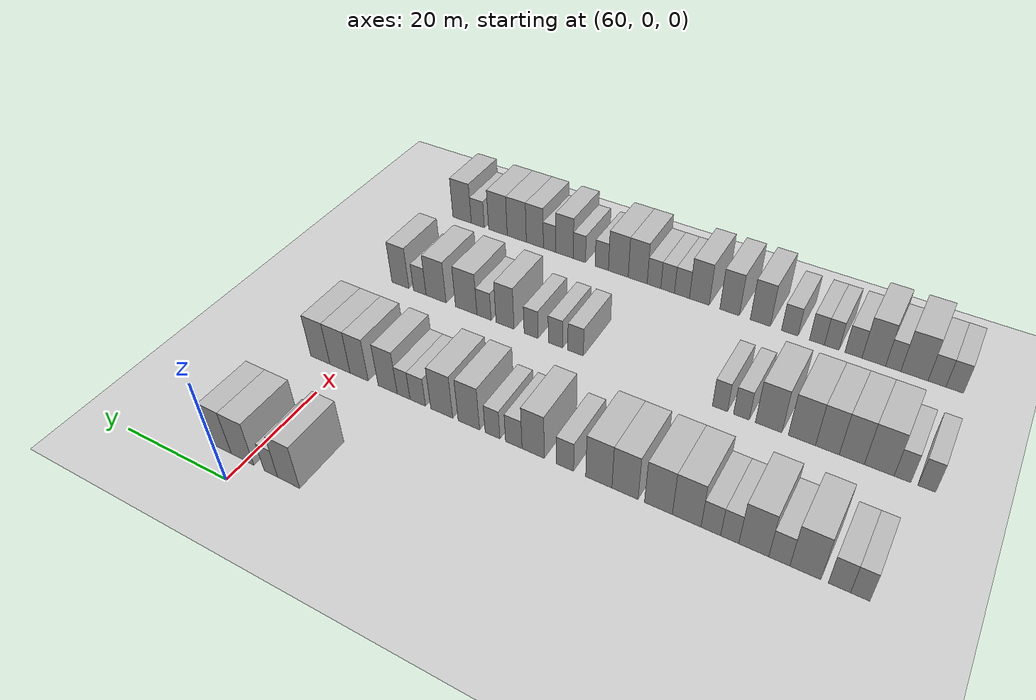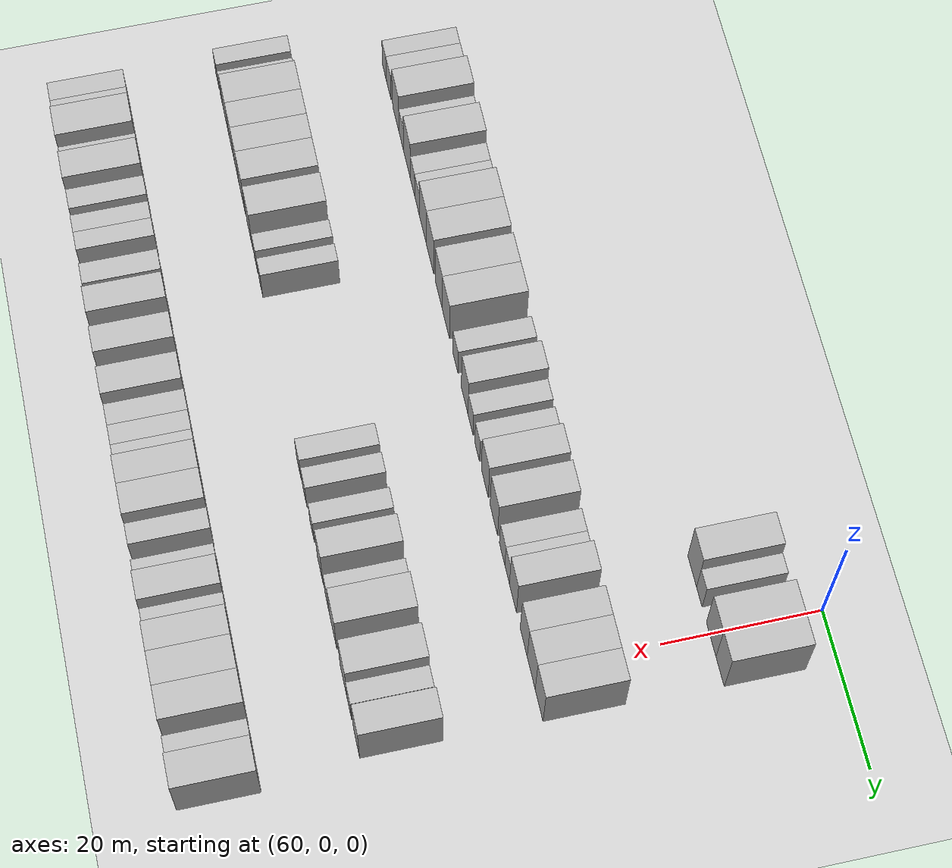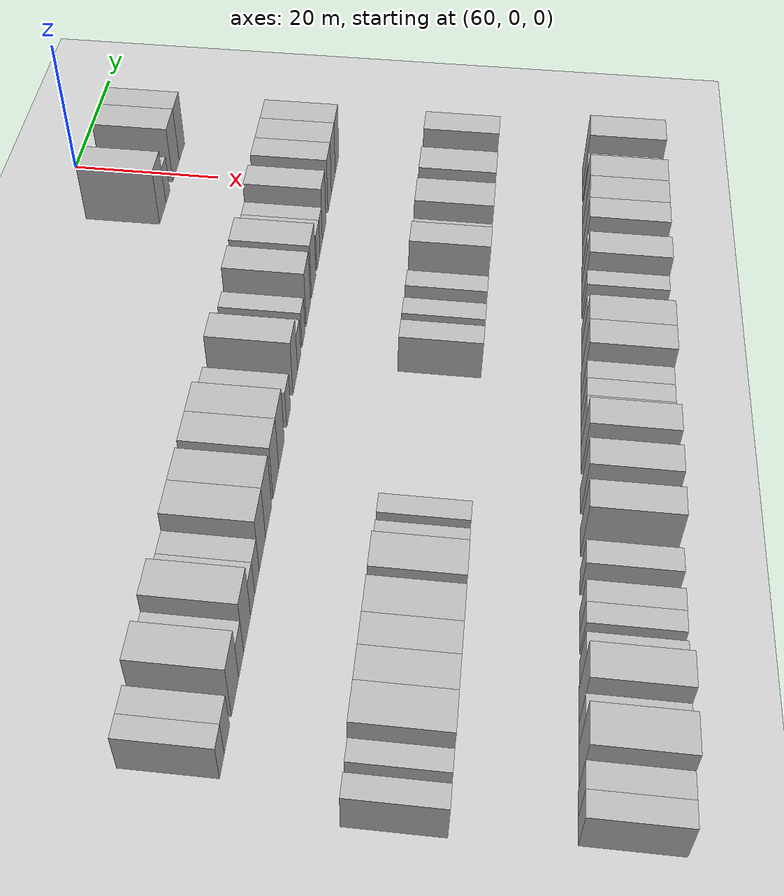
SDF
<sdf version="1.6">
 <world name="default">
  <include>
   <name>ground_plane_2</name>
   <uri>model://HANNAS_ground_plane</uri>
   <pose>100 0 0  0 0 0</pose>
  </include>
  <model name="building_486">
   <static>1</static>
   <pose>69.0000 -8.2545 0 0.000000 0.000000 0.000000</pose>
   <link name="link">
    <pose>0 0 4.50 0 0 0</pose>
    <collision name="collision"><geometry><box><size>10.0000 4.1335 9.0000</size></box></geometry></collision>
    <visual name="visual">
     <cast_shadows>0</cast_shadows>
     <geometry><box><size>10.0000 4.1335 9.0000</size></box></geometry>
     <material>
      <script>
       <uri>model://HANNAS_wall/materials/scripts</uri>
       <uri>model://HANNAS_wall/materials/textures</uri>
       <name>vrc/HANNAS_wall</name>
      </script>
     </material>
    </visual>
   </link>
  </model>
  <model name="building_487">
   <static>1</static>
   <pose>69.0000 -4.8881 0 0.000000 0.000000 0.000000</pose>
   <link name="link">
    <pose>0 0 3.00 0 0 0</pose>
    <collision name="collision"><geometry><box><size>10.0000 2.5994 6.0000</size></box></geometry></collision>
    <visual name="visual">
     <cast_shadows>0</cast_shadows>
     <geometry><box><size>10.0000 2.5994 6.0000</size></box></geometry>
     <material>
      <script>
       <uri>model://HANNAS_wall/materials/scripts</uri>
       <uri>model://HANNAS_wall/materials/textures</uri>
       <name>vrc/HANNAS_wall</name>
      </script>
     </material>
    </visual>
   </link>
  </model>
  <model name="building_488">
   <static>1</static>
   <pose>69.0000 0.6312 0 0.000000 0.000000 0.000000</pose>
   <link name="link">
    <pose>0 0 4.50 0 0 0</pose>
    <collision name="collision"><geometry><box><size>10.0000 4.4392 9.0000</size></box></geometry></collision>
    <visual name="visual">
     <cast_shadows>0</cast_shadows>
     <geometry><box><size>10.0000 4.4392 9.0000</size></box></geometry>
     <material>
      <script>
       <uri>model://HANNAS_wall/materials/scripts</uri>
       <uri>model://HANNAS_wall/materials/textures</uri>
       <name>vrc/HANNAS_wall</name>
      </script>
     </material>
    </visual>
   </link>
  </model>
  <model name="building_489">
   <static>1</static>
   <pose>69.0000 4.7384 0 0.000000 0.000000 0.000000</pose>
   <link name="link">
    <pose>0 0 4.50 0 0 0</pose>
    <collision name="collision"><geometry><box><size>10.0000 3.7751 9.0000</size></box></geometry></collision>
    <visual name="visual">
     <cast_shadows>0</cast_shadows>
     <geometry><box><size>10.0000 3.7751 9.0000</size></box></geometry>
     <material>
      <script>
       <uri>model://HANNAS_wall/materials/scripts</uri>
       <uri>model://HANNAS_wall/materials/textures</uri>
       <name>vrc/HANNAS_wall</name>
      </script>
     </material>
    </visual>
   </link>
  </model>
  <model name="building_653">
   <static>1</static>
   <pose>91.0000 -85.6545 0 0.000000 0.000000 0.000000</pose>
   <link name="link">
    <pose>0 0 3.00 0 0 0</pose>
    <collision name="collision"><geometry><box><size>10.0000 2.5437 6.0000</size></box></geometry></collision>
    <visual name="visual">
     <cast_shadows>0</cast_shadows>
     <geometry><box><size>10.0000 2.5437 6.0000</size></box></geometry>
     <material>
      <script>
       <uri>model://HANNAS_wall/materials/scripts</uri>
       <uri>model://HANNAS_wall/materials/textures</uri>
       <name>vrc/HANNAS_wall</name>
      </script>
     </material>
    </visual>
   </link>
  </model>
  <model name="building_654">
   <static>1</static>
   <pose>91.0000 -82.8929 0 0.000000 0.000000 0.000000</pose>
   <link name="link">
    <pose>0 0 3.00 0 0 0</pose>
    <collision name="collision"><geometry><box><size>10.0000 2.9796 6.0000</size></box></geometry></collision>
    <visual name="visual">
     <cast_shadows>0</cast_shadows>
     <geometry><box><size>10.0000 2.9796 6.0000</size></box></geometry>
     <material>
      <script>
       <uri>model://HANNAS_wall/materials/scripts</uri>
       <uri>model://HANNAS_wall/materials/textures</uri>
       <name>vrc/HANNAS_wall</name>
      </script>
     </material>
    </visual>
   </link>
  </model>
  <model name="building_655">
   <static>1</static>
   <pose>91.0000 -78.2719 0 0.000000 0.000000 0.000000</pose>
   <link name="link">
    <pose>0 0 4.50 0 0 0</pose>
    <collision name="collision"><geometry><box><size>10.0000 4.2624 9.0000</size></box></geometry></collision>
    <visual name="visual">
     <cast_shadows>0</cast_shadows>
     <geometry><box><size>10.0000 4.2624 9.0000</size></box></geometry>
     <material>
      <script>
       <uri>model://HANNAS_wall/materials/scripts</uri>
       <uri>model://HANNAS_wall/materials/textures</uri>
       <name>vrc/HANNAS_wall</name>
      </script>
     </material>
    </visual>
   </link>
  </model>
  <model name="building_656">
   <static>1</static>
   <pose>91.0000 -74.6591 0 0.000000 0.000000 0.000000</pose>
   <link name="link">
    <pose>0 0 3.00 0 0 0</pose>
    <collision name="collision"><geometry><box><size>10.0000 2.9634 6.0000</size></box></geometry></collision>
    <visual name="visual">
     <cast_shadows>0</cast_shadows>
     <geometry><box><size>10.0000 2.9634 6.0000</size></box></geometry>
     <material>
      <script>
       <uri>model://HANNAS_wall/materials/scripts</uri>
       <uri>model://HANNAS_wall/materials/textures</uri>
       <name>vrc/HANNAS_wall</name>
      </script>
     </material>
    </visual>
   </link>
  </model>
  <model name="building_657">
   <static>1</static>
   <pose>91.0000 -71.0320 0 0.000000 0.000000 0.000000</pose>
   <link name="link">
    <pose>0 0 4.50 0 0 0</pose>
    <collision name="collision"><geometry><box><size>10.0000 4.2907 9.0000</size></box></geometry></collision>
    <visual name="visual">
     <cast_shadows>0</cast_shadows>
     <geometry><box><size>10.0000 4.2907 9.0000</size></box></geometry>
     <material>
      <script>
       <uri>model://HANNAS_wall/materials/scripts</uri>
       <uri>model://HANNAS_wall/materials/textures</uri>
       <name>vrc/HANNAS_wall</name>
      </script>
     </material>
    </visual>
   </link>
  </model>
  <model name="building_658">
   <static>1</static>
   <pose>91.0000 -67.5625 0 0.000000 0.000000 0.000000</pose>
   <link name="link">
    <pose>0 0 3.00 0 0 0</pose>
    <collision name="collision"><geometry><box><size>10.0000 2.6484 6.0000</size></box></geometry></collision>
    <visual name="visual">
     <cast_shadows>0</cast_shadows>
     <geometry><box><size>10.0000 2.6484 6.0000</size></box></geometry>
     <material>
      <script>
       <uri>model://HANNAS_wall/materials/scripts</uri>
       <uri>model://HANNAS_wall/materials/textures</uri>
       <name>vrc/HANNAS_wall</name>
      </script>
     </material>
    </visual>
   </link>
  </model>
  <model name="building_659">
   <static>1</static>
   <pose>91.0000 -64.7855 0 0.000000 0.000000 0.000000</pose>
   <link name="link">
    <pose>0 0 3.00 0 0 0</pose>
    <collision name="collision"><geometry><box><size>10.0000 2.9054 6.0000</size></box></geometry></collision>
    <visual name="visual">
     <cast_shadows>0</cast_shadows>
     <geometry><box><size>10.0000 2.9054 6.0000</size></box></geometry>
     <material>
      <script>
       <uri>model://HANNAS_wall/materials/scripts</uri>
       <uri>model://HANNAS_wall/materials/textures</uri>
       <name>vrc/HANNAS_wall</name>
      </script>
     </material>
    </visual>
   </link>
  </model>
  <model name="building_660">
   <static>1</static>
   <pose>91.0000 -61.1602 0 0.000000 0.000000 0.000000</pose>
   <link name="link">
    <pose>0 0 4.50 0 0 0</pose>
    <collision name="collision"><geometry><box><size>10.0000 4.3453 9.0000</size></box></geometry></collision>
    <visual name="visual">
     <cast_shadows>0</cast_shadows>
     <geometry><box><size>10.0000 4.3453 9.0000</size></box></geometry>
     <material>
      <script>
       <uri>model://HANNAS_wall/materials/scripts</uri>
       <uri>model://HANNAS_wall/materials/textures</uri>
       <name>vrc/HANNAS_wall</name>
      </script>
     </material>
    </visual>
   </link>
  </model>
  <model name="building_661">
   <static>1</static>
   <pose>91.0000 -56.8305 0 0.000000 0.000000 0.000000</pose>
   <link name="link">
    <pose>0 0 4.50 0 0 0</pose>
    <collision name="collision"><geometry><box><size>10.0000 4.3140 9.0000</size></box></geometry></collision>
    <visual name="visual">
     <cast_shadows>0</cast_shadows>
     <geometry><box><size>10.0000 4.3140 9.0000</size></box></geometry>
     <material>
      <script>
       <uri>model://HANNAS_wall/materials/scripts</uri>
       <uri>model://HANNAS_wall/materials/textures</uri>
       <name>vrc/HANNAS_wall</name>
      </script>
     </material>
    </visual>
   </link>
  </model>
  <model name="building_662">
   <static>1</static>
   <pose>91.0000 -51.5848 0 0.000000 0.000000 0.000000</pose>
   <link name="link">
    <pose>0 0 4.50 0 0 0</pose>
    <collision name="collision"><geometry><box><size>10.0000 4.1774 9.0000</size></box></geometry></collision>
    <visual name="visual">
     <cast_shadows>0</cast_shadows>
     <geometry><box><size>10.0000 4.1774 9.0000</size></box></geometry>
     <material>
      <script>
       <uri>model://HANNAS_wall/materials/scripts</uri>
       <uri>model://HANNAS_wall/materials/textures</uri>
       <name>vrc/HANNAS_wall</name>
      </script>
     </material>
    </visual>
   </link>
  </model>
  <model name="building_663">
   <static>1</static>
   <pose>91.0000 -47.3595 0 0.000000 0.000000 0.000000</pose>
   <link name="link">
    <pose>0 0 4.50 0 0 0</pose>
    <collision name="collision"><geometry><box><size>10.0000 4.2732 9.0000</size></box></geometry></collision>
    <visual name="visual">
     <cast_shadows>0</cast_shadows>
     <geometry><box><size>10.0000 4.2732 9.0000</size></box></geometry>
     <material>
      <script>
       <uri>model://HANNAS_wall/materials/scripts</uri>
       <uri>model://HANNAS_wall/materials/textures</uri>
       <name>vrc/HANNAS_wall</name>
      </script>
     </material>
    </visual>
   </link>
  </model>
  <model name="building_664">
   <static>1</static>
   <pose>91.0000 -41.7494 0 0.000000 0.000000 0.000000</pose>
   <link name="link">
    <pose>0 0 3.00 0 0 0</pose>
    <collision name="collision"><geometry><box><size>10.0000 2.9472 6.0000</size></box></geometry></collision>
    <visual name="visual">
     <cast_shadows>0</cast_shadows>
     <geometry><box><size>10.0000 2.9472 6.0000</size></box></geometry>
     <material>
      <script>
       <uri>model://HANNAS_wall/materials/scripts</uri>
       <uri>model://HANNAS_wall/materials/textures</uri>
       <name>vrc/HANNAS_wall</name>
      </script>
     </material>
    </visual>
   </link>
  </model>
  <model name="building_665">
   <static>1</static>
   <pose>91.0000 -36.3549 0 0.000000 0.000000 0.000000</pose>
   <link name="link">
    <pose>0 0 4.50 0 0 0</pose>
    <collision name="collision"><geometry><box><size>10.0000 3.8418 9.0000</size></box></geometry></collision>
    <visual name="visual">
     <cast_shadows>0</cast_shadows>
     <geometry><box><size>10.0000 3.8418 9.0000</size></box></geometry>
     <material>
      <script>
       <uri>model://HANNAS_wall/materials/scripts</uri>
       <uri>model://HANNAS_wall/materials/textures</uri>
       <name>vrc/HANNAS_wall</name>
      </script>
     </material>
    </visual>
   </link>
  </model>
  <model name="building_666">
   <static>1</static>
   <pose>91.0000 -32.9878 0 0.000000 0.000000 0.000000</pose>
   <link name="link">
    <pose>0 0 3.00 0 0 0</pose>
    <collision name="collision"><geometry><box><size>10.0000 2.8923 6.0000</size></box></geometry></collision>
    <visual name="visual">
     <cast_shadows>0</cast_shadows>
     <geometry><box><size>10.0000 2.8923 6.0000</size></box></geometry>
     <material>
      <script>
       <uri>model://HANNAS_wall/materials/scripts</uri>
       <uri>model://HANNAS_wall/materials/textures</uri>
       <name>vrc/HANNAS_wall</name>
      </script>
     </material>
    </visual>
   </link>
  </model>
  <model name="building_667">
   <static>1</static>
   <pose>91.0000 -29.2185 0 0.000000 0.000000 0.000000</pose>
   <link name="link">
    <pose>0 0 3.00 0 0 0</pose>
    <collision name="collision"><geometry><box><size>10.0000 2.6464 6.0000</size></box></geometry></collision>
    <visual name="visual">
     <cast_shadows>0</cast_shadows>
     <geometry><box><size>10.0000 2.6464 6.0000</size></box></geometry>
     <material>
      <script>
       <uri>model://HANNAS_wall/materials/scripts</uri>
       <uri>model://HANNAS_wall/materials/textures</uri>
       <name>vrc/HANNAS_wall</name>
      </script>
     </material>
    </visual>
   </link>
  </model>
  <model name="building_668">
   <static>1</static>
   <pose>91.0000 -24.9297 0 0.000000 0.000000 0.000000</pose>
   <link name="link">
    <pose>0 0 4.50 0 0 0</pose>
    <collision name="collision"><geometry><box><size>10.0000 3.9312 9.0000</size></box></geometry></collision>
    <visual name="visual">
     <cast_shadows>0</cast_shadows>
     <geometry><box><size>10.0000 3.9312 9.0000</size></box></geometry>
     <material>
      <script>
       <uri>model://HANNAS_wall/materials/scripts</uri>
       <uri>model://HANNAS_wall/materials/textures</uri>
       <name>vrc/HANNAS_wall</name>
      </script>
     </material>
    </visual>
   </link>
  </model>
  <model name="building_669">
   <static>1</static>
   <pose>91.0000 -19.8974 0 0.000000 0.000000 0.000000</pose>
   <link name="link">
    <pose>0 0 4.50 0 0 0</pose>
    <collision name="collision"><geometry><box><size>10.0000 4.1333 9.0000</size></box></geometry></collision>
    <visual name="visual">
     <cast_shadows>0</cast_shadows>
     <geometry><box><size>10.0000 4.1333 9.0000</size></box></geometry>
     <material>
      <script>
       <uri>model://HANNAS_wall/materials/scripts</uri>
       <uri>model://HANNAS_wall/materials/textures</uri>
       <name>vrc/HANNAS_wall</name>
      </script>
     </material>
    </visual>
   </link>
  </model>
  <model name="building_670">
   <static>1</static>
   <pose>91.0000 -15.3457 0 0.000000 0.000000 0.000000</pose>
   <link name="link">
    <pose>0 0 3.00 0 0 0</pose>
    <collision name="collision"><geometry><box><size>10.0000 2.9701 6.0000</size></box></geometry></collision>
    <visual name="visual">
     <cast_shadows>0</cast_shadows>
     <geometry><box><size>10.0000 2.9701 6.0000</size></box></geometry>
     <material>
      <script>
       <uri>model://HANNAS_wall/materials/scripts</uri>
       <uri>model://HANNAS_wall/materials/textures</uri>
       <name>vrc/HANNAS_wall</name>
      </script>
     </material>
    </visual>
   </link>
  </model>
  <model name="building_671">
   <static>1</static>
   <pose>91.0000 -12.6246 0 0.000000 0.000000 0.000000</pose>
   <link name="link">
    <pose>0 0 3.00 0 0 0</pose>
    <collision name="collision"><geometry><box><size>10.0000 2.4721 6.0000</size></box></geometry></collision>
    <visual name="visual">
     <cast_shadows>0</cast_shadows>
     <geometry><box><size>10.0000 2.4721 6.0000</size></box></geometry>
     <material>
      <script>
       <uri>model://HANNAS_wall/materials/scripts</uri>
       <uri>model://HANNAS_wall/materials/textures</uri>
       <name>vrc/HANNAS_wall</name>
      </script>
     </material>
    </visual>
   </link>
  </model>
  <model name="building_672">
   <static>1</static>
   <pose>91.0000 -9.5034 0 0.000000 0.000000 0.000000</pose>
   <link name="link">
    <pose>0 0 4.50 0 0 0</pose>
    <collision name="collision"><geometry><box><size>10.0000 3.7703 9.0000</size></box></geometry></collision>
    <visual name="visual">
     <cast_shadows>0</cast_shadows>
     <geometry><box><size>10.0000 3.7703 9.0000</size></box></geometry>
     <material>
      <script>
       <uri>model://HANNAS_wall/materials/scripts</uri>
       <uri>model://HANNAS_wall/materials/textures</uri>
       <name>vrc/HANNAS_wall</name>
      </script>
     </material>
    </visual>
   </link>
  </model>
  <model name="building_673">
   <static>1</static>
   <pose>91.0000 -3.7763 0 0.000000 0.000000 0.000000</pose>
   <link name="link">
    <pose>0 0 4.50 0 0 0</pose>
    <collision name="collision"><geometry><box><size>10.0000 3.6840 9.0000</size></box></geometry></collision>
    <visual name="visual">
     <cast_shadows>0</cast_shadows>
     <geometry><box><size>10.0000 3.6840 9.0000</size></box></geometry>
     <material>
      <script>
       <uri>model://HANNAS_wall/materials/scripts</uri>
       <uri>model://HANNAS_wall/materials/textures</uri>
       <name>vrc/HANNAS_wall</name>
      </script>
     </material>
    </visual>
   </link>
  </model>
  <model name="building_674">
   <static>1</static>
   <pose>91.0000 0.1531 0 0.000000 0.000000 0.000000</pose>
   <link name="link">
    <pose>0 0 4.50 0 0 0</pose>
    <collision name="collision"><geometry><box><size>10.0000 4.1748 9.0000</size></box></geometry></collision>
    <visual name="visual">
     <cast_shadows>0</cast_shadows>
     <geometry><box><size>10.0000 4.1748 9.0000</size></box></geometry>
     <material>
      <script>
       <uri>model://HANNAS_wall/materials/scripts</uri>
       <uri>model://HANNAS_wall/materials/textures</uri>
       <name>vrc/HANNAS_wall</name>
      </script>
     </material>
    </visual>
   </link>
  </model>
  <model name="building_675">
   <static>1</static>
   <pose>91.0000 4.2512 0 0.000000 0.000000 0.000000</pose>
   <link name="link">
    <pose>0 0 4.50 0 0 0</pose>
    <collision name="collision"><geometry><box><size>10.0000 4.0214 9.0000</size></box></geometry></collision>
    <visual name="visual">
     <cast_shadows>0</cast_shadows>
     <geometry><box><size>10.0000 4.0214 9.0000</size></box></geometry>
     <material>
      <script>
       <uri>model://HANNAS_wall/materials/scripts</uri>
       <uri>model://HANNAS_wall/materials/textures</uri>
       <name>vrc/HANNAS_wall</name>
      </script>
     </material>
    </visual>
   </link>
  </model>
  <model name="building_842">
   <static>1</static>
   <pose>113.0000 -89.1135 0 0.000000 0.000000 0.000000</pose>
   <link name="link">
    <pose>0 0 3.00 0 0 0</pose>
    <collision name="collision"><geometry><box><size>10.0000 2.5301 6.0000</size></box></geometry></collision>
    <visual name="visual">
     <cast_shadows>0</cast_shadows>
     <geometry><box><size>10.0000 2.5301 6.0000</size></box></geometry>
     <material>
      <script>
       <uri>model://HANNAS_wall/materials/scripts</uri>
       <uri>model://HANNAS_wall/materials/textures</uri>
       <name>vrc/HANNAS_wall</name>
      </script>
     </material>
    </visual>
   </link>
  </model>
  <model name="building_843">
   <static>1</static>
   <pose>113.0000 -85.6349 0 0.000000 0.000000 0.000000</pose>
   <link name="link">
    <pose>0 0 3.00 0 0 0</pose>
    <collision name="collision"><geometry><box><size>10.0000 2.4272 6.0000</size></box></geometry></collision>
    <visual name="visual">
     <cast_shadows>0</cast_shadows>
     <geometry><box><size>10.0000 2.4272 6.0000</size></box></geometry>
     <material>
      <script>
       <uri>model://HANNAS_wall/materials/scripts</uri>
       <uri>model://HANNAS_wall/materials/textures</uri>
       <name>vrc/HANNAS_wall</name>
      </script>
     </material>
    </visual>
   </link>
  </model>
  <model name="building_844">
   <static>1</static>
   <pose>113.0000 -82.2305 0 0.000000 0.000000 0.000000</pose>
   <link name="link">
    <pose>0 0 4.50 0 0 0</pose>
    <collision name="collision"><geometry><box><size>10.0000 4.3815 9.0000</size></box></geometry></collision>
    <visual name="visual">
     <cast_shadows>0</cast_shadows>
     <geometry><box><size>10.0000 4.3815 9.0000</size></box></geometry>
     <material>
      <script>
       <uri>model://HANNAS_wall/materials/scripts</uri>
       <uri>model://HANNAS_wall/materials/textures</uri>
       <name>vrc/HANNAS_wall</name>
      </script>
     </material>
    </visual>
   </link>
  </model>
  <model name="building_845">
   <static>1</static>
   <pose>113.0000 -78.1521 0 0.000000 0.000000 0.000000</pose>
   <link name="link">
    <pose>0 0 4.50 0 0 0</pose>
    <collision name="collision"><geometry><box><size>10.0000 3.7754 9.0000</size></box></geometry></collision>
    <visual name="visual">
     <cast_shadows>0</cast_shadows>
     <geometry><box><size>10.0000 3.7754 9.0000</size></box></geometry>
     <material>
      <script>
       <uri>model://HANNAS_wall/materials/scripts</uri>
       <uri>model://HANNAS_wall/materials/textures</uri>
       <name>vrc/HANNAS_wall</name>
      </script>
     </material>
    </visual>
   </link>
  </model>
  <model name="building_846">
   <static>1</static>
   <pose>113.0000 -74.4418 0 0.000000 0.000000 0.000000</pose>
   <link name="link">
    <pose>0 0 4.50 0 0 0</pose>
    <collision name="collision"><geometry><box><size>10.0000 3.6452 9.0000</size></box></geometry></collision>
    <visual name="visual">
     <cast_shadows>0</cast_shadows>
     <geometry><box><size>10.0000 3.6452 9.0000</size></box></geometry>
     <material>
      <script>
       <uri>model://HANNAS_wall/materials/scripts</uri>
       <uri>model://HANNAS_wall/materials/textures</uri>
       <name>vrc/HANNAS_wall</name>
      </script>
     </material>
    </visual>
   </link>
  </model>
  <model name="building_847">
   <static>1</static>
   <pose>113.0000 -70.4947 0 0.000000 0.000000 0.000000</pose>
   <link name="link">
    <pose>0 0 4.50 0 0 0</pose>
    <collision name="collision"><geometry><box><size>10.0000 4.2490 9.0000</size></box></geometry></collision>
    <visual name="visual">
     <cast_shadows>0</cast_shadows>
     <geometry><box><size>10.0000 4.2490 9.0000</size></box></geometry>
     <material>
      <script>
       <uri>model://HANNAS_wall/materials/scripts</uri>
       <uri>model://HANNAS_wall/materials/textures</uri>
       <name>vrc/HANNAS_wall</name>
      </script>
     </material>
    </visual>
   </link>
  </model>
  <model name="building_848">
   <static>1</static>
   <pose>113.0000 -65.2375 0 0.000000 0.000000 0.000000</pose>
   <link name="link">
    <pose>0 0 4.50 0 0 0</pose>
    <collision name="collision"><geometry><box><size>10.0000 4.2652 9.0000</size></box></geometry></collision>
    <visual name="visual">
     <cast_shadows>0</cast_shadows>
     <geometry><box><size>10.0000 4.2652 9.0000</size></box></geometry>
     <material>
      <script>
       <uri>model://HANNAS_wall/materials/scripts</uri>
       <uri>model://HANNAS_wall/materials/textures</uri>
       <name>vrc/HANNAS_wall</name>
      </script>
     </material>
    </visual>
   </link>
  </model>
  <model name="building_849">
   <static>1</static>
   <pose>113.0000 -60.8175 0 0.000000 0.000000 0.000000</pose>
   <link name="link">
    <pose>0 0 3.00 0 0 0</pose>
    <collision name="collision"><geometry><box><size>10.0000 2.5748 6.0000</size></box></geometry></collision>
    <visual name="visual">
     <cast_shadows>0</cast_shadows>
     <geometry><box><size>10.0000 2.5748 6.0000</size></box></geometry>
     <material>
      <script>
       <uri>model://HANNAS_wall/materials/scripts</uri>
       <uri>model://HANNAS_wall/materials/textures</uri>
       <name>vrc/HANNAS_wall</name>
      </script>
     </material>
    </visual>
   </link>
  </model>
  <model name="building_850">
   <static>1</static>
   <pose>113.0000 -57.2719 0 0.000000 0.000000 0.000000</pose>
   <link name="link">
    <pose>0 0 3.00 0 0 0</pose>
    <collision name="collision"><geometry><box><size>10.0000 2.5164 6.0000</size></box></geometry></collision>
    <visual name="visual">
     <cast_shadows>0</cast_shadows>
     <geometry><box><size>10.0000 2.5164 6.0000</size></box></geometry>
     <material>
      <script>
       <uri>model://HANNAS_wall/materials/scripts</uri>
       <uri>model://HANNAS_wall/materials/textures</uri>
       <name>vrc/HANNAS_wall</name>
      </script>
     </material>
    </visual>
   </link>
  </model>
  <model name="building_851">
   <static>1</static>
   <pose>113.0000 -31.6272 0 0.000000 0.000000 0.000000</pose>
   <link name="link">
    <pose>0 0 3.00 0 0 0</pose>
    <collision name="collision"><geometry><box><size>10.0000 2.9244 6.0000</size></box></geometry></collision>
    <visual name="visual">
     <cast_shadows>0</cast_shadows>
     <geometry><box><size>10.0000 2.9244 6.0000</size></box></geometry>
     <material>
      <script>
       <uri>model://HANNAS_wall/materials/scripts</uri>
       <uri>model://HANNAS_wall/materials/textures</uri>
       <name>vrc/HANNAS_wall</name>
      </script>
     </material>
    </visual>
   </link>
  </model>
  <model name="building_852">
   <static>1</static>
   <pose>113.0000 -27.7969 0 0.000000 0.000000 0.000000</pose>
   <link name="link">
    <pose>0 0 3.00 0 0 0</pose>
    <collision name="collision"><geometry><box><size>10.0000 2.7362 6.0000</size></box></geometry></collision>
    <visual name="visual">
     <cast_shadows>0</cast_shadows>
     <geometry><box><size>10.0000 2.7362 6.0000</size></box></geometry>
     <material>
      <script>
       <uri>model://HANNAS_wall/materials/scripts</uri>
       <uri>model://HANNAS_wall/materials/textures</uri>
       <name>vrc/HANNAS_wall</name>
      </script>
     </material>
    </visual>
   </link>
  </model>
  <model name="building_853">
   <static>1</static>
   <pose>113.0000 -23.0625 0 0.000000 0.000000 0.000000</pose>
   <link name="link">
    <pose>0 0 3.00 0 0 0</pose>
    <collision name="collision"><geometry><box><size>10.0000 2.7326 6.0000</size></box></geometry></collision>
    <visual name="visual">
     <cast_shadows>0</cast_shadows>
     <geometry><box><size>10.0000 2.7326 6.0000</size></box></geometry>
     <material>
      <script>
       <uri>model://HANNAS_wall/materials/scripts</uri>
       <uri>model://HANNAS_wall/materials/textures</uri>
       <name>vrc/HANNAS_wall</name>
      </script>
     </material>
    </visual>
   </link>
  </model>
  <model name="building_854">
   <static>1</static>
   <pose>113.0000 -17.8866 0 0.000000 0.000000 0.000000</pose>
   <link name="link">
    <pose>0 0 4.50 0 0 0</pose>
    <collision name="collision"><geometry><box><size>10.0000 3.6192 9.0000</size></box></geometry></collision>
    <visual name="visual">
     <cast_shadows>0</cast_shadows>
     <geometry><box><size>10.0000 3.6192 9.0000</size></box></geometry>
     <material>
      <script>
       <uri>model://HANNAS_wall/materials/scripts</uri>
       <uri>model://HANNAS_wall/materials/textures</uri>
       <name>vrc/HANNAS_wall</name>
      </script>
     </material>
    </visual>
   </link>
  </model>
  <model name="building_855">
   <static>1</static>
   <pose>113.0000 -13.6237 0 0.000000 0.000000 0.000000</pose>
   <link name="link">
    <pose>0 0 3.00 0 0 0</pose>
    <collision name="collision"><geometry><box><size>10.0000 2.9065 6.0000</size></box></geometry></collision>
    <visual name="visual">
     <cast_shadows>0</cast_shadows>
     <geometry><box><size>10.0000 2.9065 6.0000</size></box></geometry>
     <material>
      <script>
       <uri>model://HANNAS_wall/materials/scripts</uri>
       <uri>model://HANNAS_wall/materials/textures</uri>
       <name>vrc/HANNAS_wall</name>
      </script>
     </material>
    </visual>
   </link>
  </model>
  <model name="building_856">
   <static>1</static>
   <pose>113.0000 -9.9370 0 0.000000 0.000000 0.000000</pose>
   <link name="link">
    <pose>0 0 4.50 0 0 0</pose>
    <collision name="collision"><geometry><box><size>10.0000 4.4671 9.0000</size></box></geometry></collision>
    <visual name="visual">
     <cast_shadows>0</cast_shadows>
     <geometry><box><size>10.0000 4.4671 9.0000</size></box></geometry>
     <material>
      <script>
       <uri>model://HANNAS_wall/materials/scripts</uri>
       <uri>model://HANNAS_wall/materials/textures</uri>
       <name>vrc/HANNAS_wall</name>
      </script>
     </material>
    </visual>
   </link>
  </model>
  <model name="building_857">
   <static>1</static>
   <pose>113.0000 -3.5688 0 0.000000 0.000000 0.000000</pose>
   <link name="link">
    <pose>0 0 4.50 0 0 0</pose>
    <collision name="collision"><geometry><box><size>10.0000 4.2692 9.0000</size></box></geometry></collision>
    <visual name="visual">
     <cast_shadows>0</cast_shadows>
     <geometry><box><size>10.0000 4.2692 9.0000</size></box></geometry>
     <material>
      <script>
       <uri>model://HANNAS_wall/materials/scripts</uri>
       <uri>model://HANNAS_wall/materials/textures</uri>
       <name>vrc/HANNAS_wall</name>
      </script>
     </material>
    </visual>
   </link>
  </model>
  <model name="building_858">
   <static>1</static>
   <pose>113.0000 -0.0644 0 0.000000 0.000000 0.000000</pose>
   <link name="link">
    <pose>0 0 3.00 0 0 0</pose>
    <collision name="collision"><geometry><box><size>10.0000 2.7396 6.0000</size></box></geometry></collision>
    <visual name="visual">
     <cast_shadows>0</cast_shadows>
     <geometry><box><size>10.0000 2.7396 6.0000</size></box></geometry>
     <material>
      <script>
       <uri>model://HANNAS_wall/materials/scripts</uri>
       <uri>model://HANNAS_wall/materials/textures</uri>
       <name>vrc/HANNAS_wall</name>
      </script>
     </material>
    </visual>
   </link>
  </model>
  <model name="building_859">
   <static>1</static>
   <pose>113.0000 4.1837 0 0.000000 0.000000 0.000000</pose>
   <link name="link">
    <pose>0 0 4.50 0 0 0</pose>
    <collision name="collision"><geometry><box><size>10.0000 3.7566 9.0000</size></box></geometry></collision>
    <visual name="visual">
     <cast_shadows>0</cast_shadows>
     <geometry><box><size>10.0000 3.7566 9.0000</size></box></geometry>
     <material>
      <script>
       <uri>model://HANNAS_wall/materials/scripts</uri>
       <uri>model://HANNAS_wall/materials/textures</uri>
       <name>vrc/HANNAS_wall</name>
      </script>
     </material>
    </visual>
   </link>
  </model>
  <model name="building_1028">
   <static>1</static>
   <pose>135.0000 -88.4231 0 0.000000 0.000000 0.000000</pose>
   <link name="link">
    <pose>0 0 3.00 0 0 0</pose>
    <collision name="collision"><geometry><box><size>10.0000 2.7412 6.0000</size></box></geometry></collision>
    <visual name="visual">
     <cast_shadows>0</cast_shadows>
     <geometry><box><size>10.0000 2.7412 6.0000</size></box></geometry>
     <material>
      <script>
       <uri>model://HANNAS_wall/materials/scripts</uri>
       <uri>model://HANNAS_wall/materials/textures</uri>
       <name>vrc/HANNAS_wall</name>
      </script>
     </material>
    </visual>
   </link>
  </model>
  <model name="building_1029">
   <static>1</static>
   <pose>135.0000 -85.6457 0 0.000000 0.000000 0.000000</pose>
   <link name="link">
    <pose>0 0 3.00 0 0 0</pose>
    <collision name="collision"><geometry><box><size>10.0000 2.8137 6.0000</size></box></geometry></collision>
    <visual name="visual">
     <cast_shadows>0</cast_shadows>
     <geometry><box><size>10.0000 2.8137 6.0000</size></box></geometry>
     <material>
      <script>
       <uri>model://HANNAS_wall/materials/scripts</uri>
       <uri>model://HANNAS_wall/materials/textures</uri>
       <name>vrc/HANNAS_wall</name>
      </script>
     </material>
    </visual>
   </link>
  </model>
  <model name="building_1030">
   <static>1</static>
   <pose>135.0000 -82.0548 0 0.000000 0.000000 0.000000</pose>
   <link name="link">
    <pose>0 0 4.50 0 0 0</pose>
    <collision name="collision"><geometry><box><size>10.0000 4.3681 9.0000</size></box></geometry></collision>
    <visual name="visual">
     <cast_shadows>0</cast_shadows>
     <geometry><box><size>10.0000 4.3681 9.0000</size></box></geometry>
     <material>
      <script>
       <uri>model://HANNAS_wall/materials/scripts</uri>
       <uri>model://HANNAS_wall/materials/textures</uri>
       <name>vrc/HANNAS_wall</name>
      </script>
     </material>
    </visual>
   </link>
  </model>
  <model name="building_1031">
   <static>1</static>
   <pose>135.0000 -78.6374 0 0.000000 0.000000 0.000000</pose>
   <link name="link">
    <pose>0 0 3.00 0 0 0</pose>
    <collision name="collision"><geometry><box><size>10.0000 2.4668 6.0000</size></box></geometry></collision>
    <visual name="visual">
     <cast_shadows>0</cast_shadows>
     <geometry><box><size>10.0000 2.4668 6.0000</size></box></geometry>
     <material>
      <script>
       <uri>model://HANNAS_wall/materials/scripts</uri>
       <uri>model://HANNAS_wall/materials/textures</uri>
       <name>vrc/HANNAS_wall</name>
      </script>
     </material>
    </visual>
   </link>
  </model>
  <model name="building_1032">
   <static>1</static>
   <pose>135.0000 -75.4474 0 0.000000 0.000000 0.000000</pose>
   <link name="link">
    <pose>0 0 4.50 0 0 0</pose>
    <collision name="collision"><geometry><box><size>10.0000 3.9131 9.0000</size></box></geometry></collision>
    <visual name="visual">
     <cast_shadows>0</cast_shadows>
     <geometry><box><size>10.0000 3.9131 9.0000</size></box></geometry>
     <material>
      <script>
       <uri>model://HANNAS_wall/materials/scripts</uri>
       <uri>model://HANNAS_wall/materials/textures</uri>
       <name>vrc/HANNAS_wall</name>
      </script>
     </material>
    </visual>
   </link>
  </model>
  <model name="building_1033">
   <static>1</static>
   <pose>135.0000 -72.0569 0 0.000000 0.000000 0.000000</pose>
   <link name="link">
    <pose>0 0 3.00 0 0 0</pose>
    <collision name="collision"><geometry><box><size>10.0000 2.8679 6.0000</size></box></geometry></collision>
    <visual name="visual">
     <cast_shadows>0</cast_shadows>
     <geometry><box><size>10.0000 2.8679 6.0000</size></box></geometry>
     <material>
      <script>
       <uri>model://HANNAS_wall/materials/scripts</uri>
       <uri>model://HANNAS_wall/materials/textures</uri>
       <name>vrc/HANNAS_wall</name>
      </script>
     </material>
    </visual>
   </link>
  </model>
  <model name="building_1034">
   <static>1</static>
   <pose>135.0000 -68.3785 0 0.000000 0.000000 0.000000</pose>
   <link name="link">
    <pose>0 0 3.00 0 0 0</pose>
    <collision name="collision"><geometry><box><size>10.0000 2.4889 6.0000</size></box></geometry></collision>
    <visual name="visual">
     <cast_shadows>0</cast_shadows>
     <geometry><box><size>10.0000 2.4889 6.0000</size></box></geometry>
     <material>
      <script>
       <uri>model://HANNAS_wall/materials/scripts</uri>
       <uri>model://HANNAS_wall/materials/textures</uri>
       <name>vrc/HANNAS_wall</name>
      </script>
     </material>
    </visual>
   </link>
  </model>
  <model name="building_1035">
   <static>1</static>
   <pose>135.0000 -65.8366 0 0.000000 0.000000 0.000000</pose>
   <link name="link">
    <pose>0 0 3.00 0 0 0</pose>
    <collision name="collision"><geometry><box><size>10.0000 2.5948 6.0000</size></box></geometry></collision>
    <visual name="visual">
     <cast_shadows>0</cast_shadows>
     <geometry><box><size>10.0000 2.5948 6.0000</size></box></geometry>
     <material>
      <script>
       <uri>model://HANNAS_wall/materials/scripts</uri>
       <uri>model://HANNAS_wall/materials/textures</uri>
       <name>vrc/HANNAS_wall</name>
      </script>
     </material>
    </visual>
   </link>
  </model>
  <model name="building_1036">
   <static>1</static>
   <pose>135.0000 -61.0817 0 0.000000 0.000000 0.000000</pose>
   <link name="link">
    <pose>0 0 3.00 0 0 0</pose>
    <collision name="collision"><geometry><box><size>10.0000 2.9149 6.0000</size></box></geometry></collision>
    <visual name="visual">
     <cast_shadows>0</cast_shadows>
     <geometry><box><size>10.0000 2.9149 6.0000</size></box></geometry>
     <material>
      <script>
       <uri>model://HANNAS_wall/materials/scripts</uri>
       <uri>model://HANNAS_wall/materials/textures</uri>
       <name>vrc/HANNAS_wall</name>
      </script>
     </material>
    </visual>
   </link>
  </model>
  <model name="building_1037">
   <static>1</static>
   <pose>135.0000 -55.8141 0 0.000000 0.000000 0.000000</pose>
   <link name="link">
    <pose>0 0 4.50 0 0 0</pose>
    <collision name="collision"><geometry><box><size>10.0000 3.6203 9.0000</size></box></geometry></collision>
    <visual name="visual">
     <cast_shadows>0</cast_shadows>
     <geometry><box><size>10.0000 3.6203 9.0000</size></box></geometry>
     <material>
      <script>
       <uri>model://HANNAS_wall/materials/scripts</uri>
       <uri>model://HANNAS_wall/materials/textures</uri>
       <name>vrc/HANNAS_wall</name>
      </script>
     </material>
    </visual>
   </link>
  </model>
  <model name="building_1038">
   <static>1</static>
   <pose>135.0000 -50.1962 0 0.000000 0.000000 0.000000</pose>
   <link name="link">
    <pose>0 0 4.50 0 0 0</pose>
    <collision name="collision"><geometry><box><size>10.0000 3.6156 9.0000</size></box></geometry></collision>
    <visual name="visual">
     <cast_shadows>0</cast_shadows>
     <geometry><box><size>10.0000 3.6156 9.0000</size></box></geometry>
     <material>
      <script>
       <uri>model://HANNAS_wall/materials/scripts</uri>
       <uri>model://HANNAS_wall/materials/textures</uri>
       <name>vrc/HANNAS_wall</name>
      </script>
     </material>
    </visual>
   </link>
  </model>
  <model name="building_1039">
   <static>1</static>
   <pose>135.0000 -44.5110 0 0.000000 0.000000 0.000000</pose>
   <link name="link">
    <pose>0 0 4.50 0 0 0</pose>
    <collision name="collision"><geometry><box><size>10.0000 3.7549 9.0000</size></box></geometry></collision>
    <visual name="visual">
     <cast_shadows>0</cast_shadows>
     <geometry><box><size>10.0000 3.7549 9.0000</size></box></geometry>
     <material>
      <script>
       <uri>model://HANNAS_wall/materials/scripts</uri>
       <uri>model://HANNAS_wall/materials/textures</uri>
       <name>vrc/HANNAS_wall</name>
      </script>
     </material>
    </visual>
   </link>
  </model>
  <model name="building_1040">
   <static>1</static>
   <pose>135.0000 -41.1889 0 0.000000 0.000000 0.000000</pose>
   <link name="link">
    <pose>0 0 3.00 0 0 0</pose>
    <collision name="collision"><geometry><box><size>10.0000 2.8893 6.0000</size></box></geometry></collision>
    <visual name="visual">
     <cast_shadows>0</cast_shadows>
     <geometry><box><size>10.0000 2.8893 6.0000</size></box></geometry>
     <material>
      <script>
       <uri>model://HANNAS_wall/materials/scripts</uri>
       <uri>model://HANNAS_wall/materials/textures</uri>
       <name>vrc/HANNAS_wall</name>
      </script>
     </material>
    </visual>
   </link>
  </model>
  <model name="building_1041">
   <static>1</static>
   <pose>135.0000 -38.4097 0 0.000000 0.000000 0.000000</pose>
   <link name="link">
    <pose>0 0 3.00 0 0 0</pose>
    <collision name="collision"><geometry><box><size>10.0000 2.6690 6.0000</size></box></geometry></collision>
    <visual name="visual">
     <cast_shadows>0</cast_shadows>
     <geometry><box><size>10.0000 2.6690 6.0000</size></box></geometry>
     <material>
      <script>
       <uri>model://HANNAS_wall/materials/scripts</uri>
       <uri>model://HANNAS_wall/materials/textures</uri>
       <name>vrc/HANNAS_wall</name>
      </script>
     </material>
    </visual>
   </link>
  </model>
  <model name="building_1042">
   <static>1</static>
   <pose>135.0000 -35.7220 0 0.000000 0.000000 0.000000</pose>
   <link name="link">
    <pose>0 0 3.00 0 0 0</pose>
    <collision name="collision"><geometry><box><size>10.0000 2.7065 6.0000</size></box></geometry></collision>
    <visual name="visual">
     <cast_shadows>0</cast_shadows>
     <geometry><box><size>10.0000 2.7065 6.0000</size></box></geometry>
     <material>
      <script>
       <uri>model://HANNAS_wall/materials/scripts</uri>
       <uri>model://HANNAS_wall/materials/textures</uri>
       <name>vrc/HANNAS_wall</name>
      </script>
     </material>
    </visual>
   </link>
  </model>
  <model name="building_1043">
   <static>1</static>
   <pose>135.0000 -32.4720 0 0.000000 0.000000 0.000000</pose>
   <link name="link">
    <pose>0 0 4.50 0 0 0</pose>
    <collision name="collision"><geometry><box><size>10.0000 3.7934 9.0000</size></box></geometry></collision>
    <visual name="visual">
     <cast_shadows>0</cast_shadows>
     <geometry><box><size>10.0000 3.7934 9.0000</size></box></geometry>
     <material>
      <script>
       <uri>model://HANNAS_wall/materials/scripts</uri>
       <uri>model://HANNAS_wall/materials/textures</uri>
       <name>vrc/HANNAS_wall</name>
      </script>
     </material>
    </visual>
   </link>
  </model>
  <model name="building_1044">
   <static>1</static>
   <pose>135.0000 -28.5601 0 0.000000 0.000000 0.000000</pose>
   <link name="link">
    <pose>0 0 4.50 0 0 0</pose>
    <collision name="collision"><geometry><box><size>10.0000 4.0303 9.0000</size></box></geometry></collision>
    <visual name="visual">
     <cast_shadows>0</cast_shadows>
     <geometry><box><size>10.0000 4.0303 9.0000</size></box></geometry>
     <material>
      <script>
       <uri>model://HANNAS_wall/materials/scripts</uri>
       <uri>model://HANNAS_wall/materials/textures</uri>
       <name>vrc/HANNAS_wall</name>
      </script>
     </material>
    </visual>
   </link>
  </model>
  <model name="building_1045">
   <static>1</static>
   <pose>135.0000 -25.1697 0 0.000000 0.000000 0.000000</pose>
   <link name="link">
    <pose>0 0 3.00 0 0 0</pose>
    <collision name="collision"><geometry><box><size>10.0000 2.7505 6.0000</size></box></geometry></collision>
    <visual name="visual">
     <cast_shadows>0</cast_shadows>
     <geometry><box><size>10.0000 2.7505 6.0000</size></box></geometry>
     <material>
      <script>
       <uri>model://HANNAS_wall/materials/scripts</uri>
       <uri>model://HANNAS_wall/materials/textures</uri>
       <name>vrc/HANNAS_wall</name>
      </script>
     </material>
    </visual>
   </link>
  </model>
  <model name="building_1046">
   <static>1</static>
   <pose>135.0000 -20.5140 0 0.000000 0.000000 0.000000</pose>
   <link name="link">
    <pose>0 0 3.00 0 0 0</pose>
    <collision name="collision"><geometry><box><size>10.0000 2.5608 6.0000</size></box></geometry></collision>
    <visual name="visual">
     <cast_shadows>0</cast_shadows>
     <geometry><box><size>10.0000 2.5608 6.0000</size></box></geometry>
     <material>
      <script>
       <uri>model://HANNAS_wall/materials/scripts</uri>
       <uri>model://HANNAS_wall/materials/textures</uri>
       <name>vrc/HANNAS_wall</name>
      </script>
     </material>
    </visual>
   </link>
  </model>
  <model name="building_1047">
   <static>1</static>
   <pose>135.0000 -17.3598 0 0.000000 0.000000 0.000000</pose>
   <link name="link">
    <pose>0 0 4.50 0 0 0</pose>
    <collision name="collision"><geometry><box><size>10.0000 3.7477 9.0000</size></box></geometry></collision>
    <visual name="visual">
     <cast_shadows>0</cast_shadows>
     <geometry><box><size>10.0000 3.7477 9.0000</size></box></geometry>
     <material>
      <script>
       <uri>model://HANNAS_wall/materials/scripts</uri>
       <uri>model://HANNAS_wall/materials/textures</uri>
       <name>vrc/HANNAS_wall</name>
      </script>
     </material>
    </visual>
   </link>
  </model>
  <model name="building_1048">
   <static>1</static>
   <pose>135.0000 -14.1493 0 0.000000 0.000000 0.000000</pose>
   <link name="link">
    <pose>0 0 3.00 0 0 0</pose>
    <collision name="collision"><geometry><box><size>10.0000 2.6732 6.0000</size></box></geometry></collision>
    <visual name="visual">
     <cast_shadows>0</cast_shadows>
     <geometry><box><size>10.0000 2.6732 6.0000</size></box></geometry>
     <material>
      <script>
       <uri>model://HANNAS_wall/materials/scripts</uri>
       <uri>model://HANNAS_wall/materials/textures</uri>
       <name>vrc/HANNAS_wall</name>
      </script>
     </material>
    </visual>
   </link>
  </model>
  <model name="building_1049">
   <static>1</static>
   <pose>135.0000 -10.9500 0 0.000000 0.000000 0.000000</pose>
   <link name="link">
    <pose>0 0 4.50 0 0 0</pose>
    <collision name="collision"><geometry><box><size>10.0000 3.7255 9.0000</size></box></geometry></collision>
    <visual name="visual">
     <cast_shadows>0</cast_shadows>
     <geometry><box><size>10.0000 3.7255 9.0000</size></box></geometry>
     <material>
      <script>
       <uri>model://HANNAS_wall/materials/scripts</uri>
       <uri>model://HANNAS_wall/materials/textures</uri>
       <name>vrc/HANNAS_wall</name>
      </script>
     </material>
    </visual>
   </link>
  </model>
  <model name="building_1050">
   <static>1</static>
   <pose>135.0000 -6.9620 0 0.000000 0.000000 0.000000</pose>
   <link name="link">
    <pose>0 0 4.50 0 0 0</pose>
    <collision name="collision"><geometry><box><size>10.0000 4.2504 9.0000</size></box></geometry></collision>
    <visual name="visual">
     <cast_shadows>0</cast_shadows>
     <geometry><box><size>10.0000 4.2504 9.0000</size></box></geometry>
     <material>
      <script>
       <uri>model://HANNAS_wall/materials/scripts</uri>
       <uri>model://HANNAS_wall/materials/textures</uri>
       <name>vrc/HANNAS_wall</name>
      </script>
     </material>
    </visual>
   </link>
  </model>
  <model name="building_1051">
   <static>1</static>
   <pose>135.0000 -2.7309 0 0.000000 0.000000 0.000000</pose>
   <link name="link">
    <pose>0 0 4.50 0 0 0</pose>
    <collision name="collision"><geometry><box><size>10.0000 4.2119 9.0000</size></box></geometry></collision>
    <visual name="visual">
     <cast_shadows>0</cast_shadows>
     <geometry><box><size>10.0000 4.2119 9.0000</size></box></geometry>
     <material>
      <script>
       <uri>model://HANNAS_wall/materials/scripts</uri>
       <uri>model://HANNAS_wall/materials/textures</uri>
       <name>vrc/HANNAS_wall</name>
      </script>
     </material>
    </visual>
   </link>
  </model>
  <model name="building_1052">
   <static>1</static>
   <pose>135.0000 1.8728 0 0.000000 0.000000 0.000000</pose>
   <link name="link">
    <pose>0 0 3.00 0 0 0</pose>
    <collision name="collision"><geometry><box><size>10.0000 2.9955 6.0000</size></box></geometry></collision>
    <visual name="visual">
     <cast_shadows>0</cast_shadows>
     <geometry><box><size>10.0000 2.9955 6.0000</size></box></geometry>
     <material>
      <script>
       <uri>model://HANNAS_wall/materials/scripts</uri>
       <uri>model://HANNAS_wall/materials/textures</uri>
       <name>vrc/HANNAS_wall</name>
      </script>
     </material>
    </visual>
   </link>
  </model>
  <model name="building_1053">
   <static>1</static>
   <pose>135.0000 5.5156 0 0.000000 0.000000 0.000000</pose>
   <link name="link">
    <pose>0 0 4.50 0 0 0</pose>
    <collision name="collision"><geometry><box><size>10.0000 4.2901 9.0000</size></box></geometry></collision>
    <visual name="visual">
     <cast_shadows>0</cast_shadows>
     <geometry><box><size>10.0000 4.2901 9.0000</size></box></geometry>
     <material>
      <script>
       <uri>model://HANNAS_wall/materials/scripts</uri>
       <uri>model://HANNAS_wall/materials/textures</uri>
       <name>vrc/HANNAS_wall</name>
      </script>
     </material>
    </visual>
   </link>
  </model>
 </world>
</sdf>
